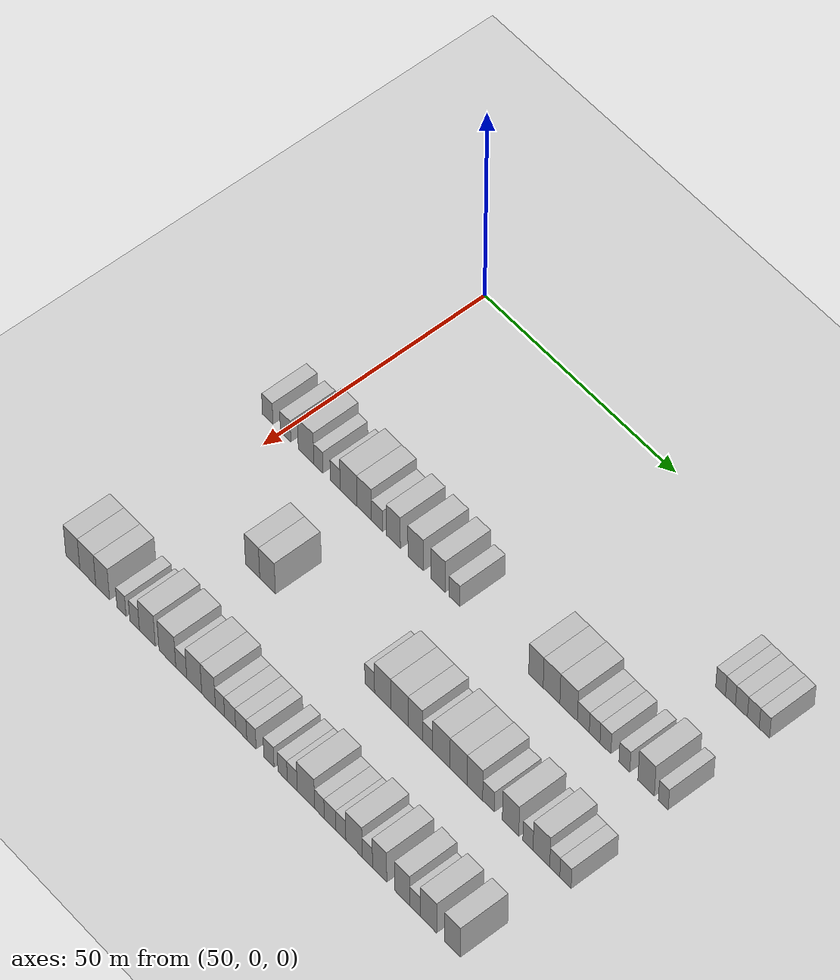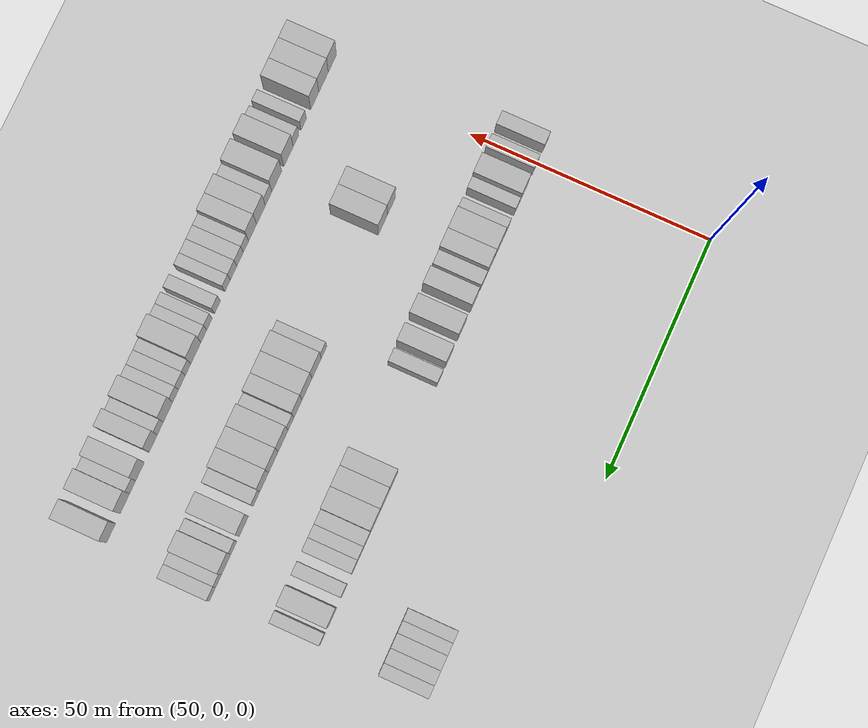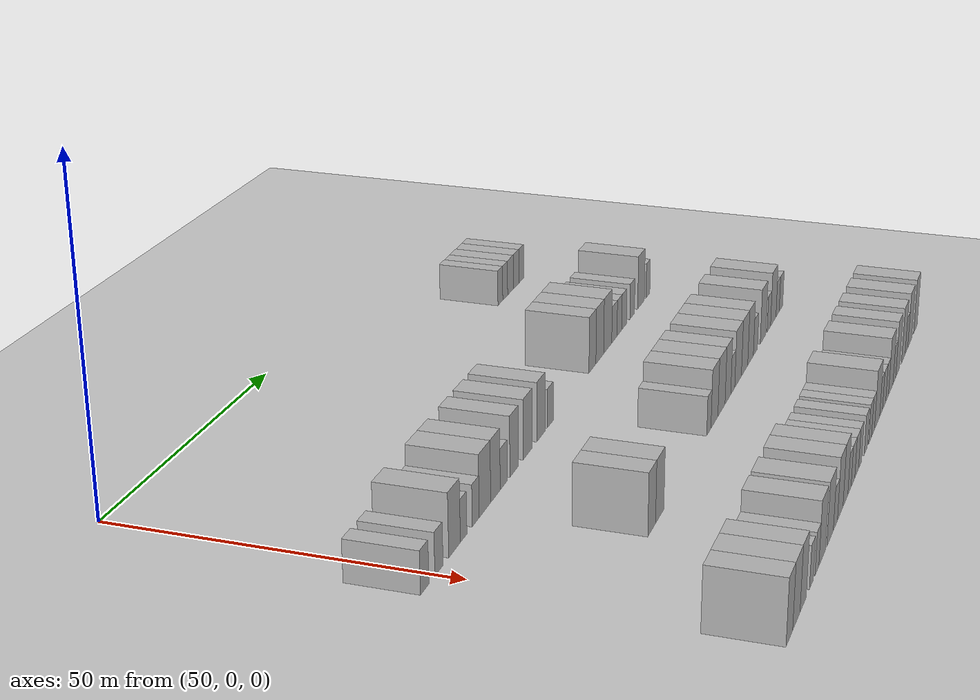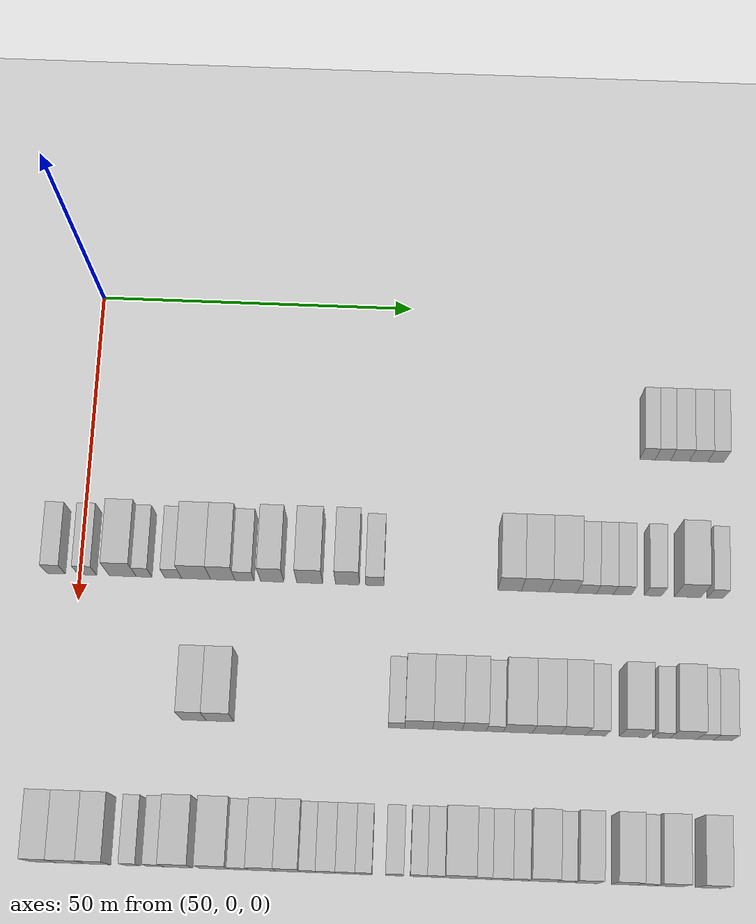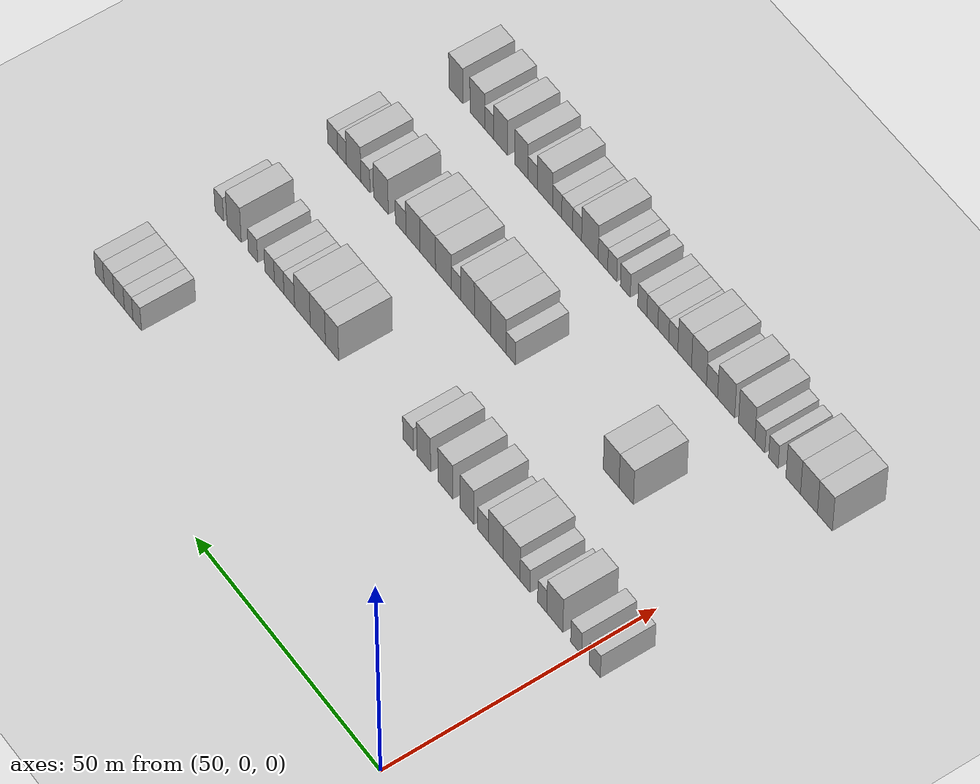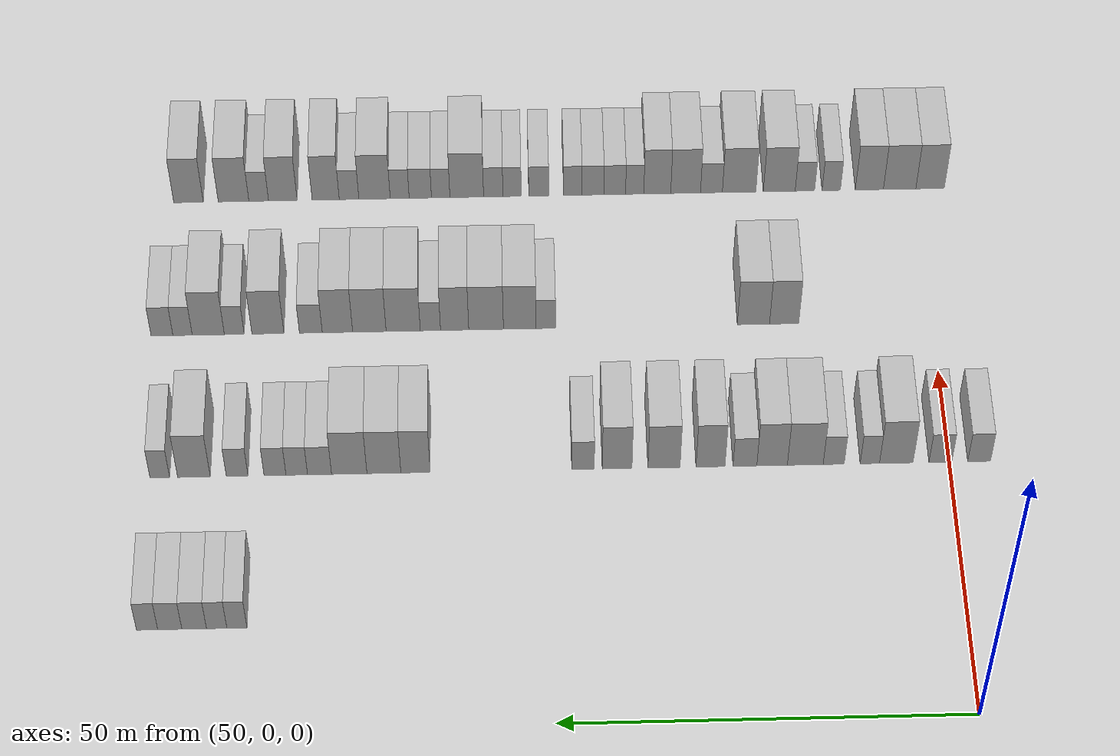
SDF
<sdf version="1.6">
 <world name="default">
  <include>
   <name>ground_plane_2</name>
   <uri>model://HANNAS_ground_plane</uri>
   <pose>100 0 0  0 0 0</pose>
  </include>
  <model name="building_489">
   <static>1</static>
   <pose>69.0000 88.1340 0 0.000000 0.000000 0.000000</pose>
   <link name="link">
    <pose>0 0 3.00 0 0 0</pose>
    <collision name="collision"><geometry><box><size>10.0000 2.4201 6.0000</size></box></geometry></collision>
    <visual name="visual">
     <cast_shadows>0</cast_shadows>
     <geometry><box><size>10.0000 2.4201 6.0000</size></box></geometry>
     <material>
      <script>
       <uri>model://HANNAS_wall/materials/scripts</uri>
       <uri>model://HANNAS_wall/materials/textures</uri>
       <name>vrc/HANNAS_wall</name>
      </script>
     </material>
    </visual>
   </link>
  </model>
  <model name="building_490">
   <static>1</static>
   <pose>69.0000 90.5701 0 0.000000 0.000000 0.000000</pose>
   <link name="link">
    <pose>0 0 3.00 0 0 0</pose>
    <collision name="collision"><geometry><box><size>10.0000 2.4521 6.0000</size></box></geometry></collision>
    <visual name="visual">
     <cast_shadows>0</cast_shadows>
     <geometry><box><size>10.0000 2.4521 6.0000</size></box></geometry>
     <material>
      <script>
       <uri>model://HANNAS_wall/materials/scripts</uri>
       <uri>model://HANNAS_wall/materials/textures</uri>
       <name>vrc/HANNAS_wall</name>
      </script>
     </material>
    </visual>
   </link>
  </model>
  <model name="building_491">
   <static>1</static>
   <pose>69.0000 93.2754 0 0.000000 0.000000 0.000000</pose>
   <link name="link">
    <pose>0 0 3.00 0 0 0</pose>
    <collision name="collision"><geometry><box><size>10.0000 2.9585 6.0000</size></box></geometry></collision>
    <visual name="visual">
     <cast_shadows>0</cast_shadows>
     <geometry><box><size>10.0000 2.9585 6.0000</size></box></geometry>
     <material>
      <script>
       <uri>model://HANNAS_wall/materials/scripts</uri>
       <uri>model://HANNAS_wall/materials/textures</uri>
       <name>vrc/HANNAS_wall</name>
      </script>
     </material>
    </visual>
   </link>
  </model>
  <model name="building_492">
   <static>1</static>
   <pose>69.0000 96.2044 0 0.000000 0.000000 0.000000</pose>
   <link name="link">
    <pose>0 0 3.00 0 0 0</pose>
    <collision name="collision"><geometry><box><size>10.0000 2.8995 6.0000</size></box></geometry></collision>
    <visual name="visual">
     <cast_shadows>0</cast_shadows>
     <geometry><box><size>10.0000 2.8995 6.0000</size></box></geometry>
     <material>
      <script>
       <uri>model://HANNAS_wall/materials/scripts</uri>
       <uri>model://HANNAS_wall/materials/textures</uri>
       <name>vrc/HANNAS_wall</name>
      </script>
     </material>
    </visual>
   </link>
  </model>
  <model name="building_493">
   <static>1</static>
   <pose>69.0000 98.9300 0 0.000000 0.000000 0.000000</pose>
   <link name="link">
    <pose>0 0 3.00 0 0 0</pose>
    <collision name="collision"><geometry><box><size>10.0000 2.5518 6.0000</size></box></geometry></collision>
    <visual name="visual">
     <cast_shadows>0</cast_shadows>
     <geometry><box><size>10.0000 2.5518 6.0000</size></box></geometry>
     <material>
      <script>
       <uri>model://HANNAS_wall/materials/scripts</uri>
       <uri>model://HANNAS_wall/materials/textures</uri>
       <name>vrc/HANNAS_wall</name>
      </script>
     </material>
    </visual>
   </link>
  </model>
  <model name="building_658">
   <static>1</static>
   <pose>91.0000 -3.7463 0 0.000000 0.000000 0.000000</pose>
   <link name="link">
    <pose>0 0 3.00 0 0 0</pose>
    <collision name="collision"><geometry><box><size>10.0000 2.8532 6.0000</size></box></geometry></collision>
    <visual name="visual">
     <cast_shadows>0</cast_shadows>
     <geometry><box><size>10.0000 2.8532 6.0000</size></box></geometry>
     <material>
      <script>
       <uri>model://HANNAS_wall/materials/scripts</uri>
       <uri>model://HANNAS_wall/materials/textures</uri>
       <name>vrc/HANNAS_wall</name>
      </script>
     </material>
    </visual>
   </link>
  </model>
  <model name="building_659">
   <static>1</static>
   <pose>91.0000 1.1121 0 0.000000 0.000000 0.000000</pose>
   <link name="link">
    <pose>0 0 3.00 0 0 0</pose>
    <collision name="collision"><geometry><box><size>10.0000 2.8635 6.0000</size></box></geometry></collision>
    <visual name="visual">
     <cast_shadows>0</cast_shadows>
     <geometry><box><size>10.0000 2.8635 6.0000</size></box></geometry>
     <material>
      <script>
       <uri>model://HANNAS_wall/materials/scripts</uri>
       <uri>model://HANNAS_wall/materials/textures</uri>
       <name>vrc/HANNAS_wall</name>
      </script>
     </material>
    </visual>
   </link>
  </model>
  <model name="building_660">
   <static>1</static>
   <pose>91.0000 6.6445 0 0.000000 0.000000 0.000000</pose>
   <link name="link">
    <pose>0 0 4.50 0 0 0</pose>
    <collision name="collision"><geometry><box><size>10.0000 4.2013 9.0000</size></box></geometry></collision>
    <visual name="visual">
     <cast_shadows>0</cast_shadows>
     <geometry><box><size>10.0000 4.2013 9.0000</size></box></geometry>
     <material>
      <script>
       <uri>model://HANNAS_wall/materials/scripts</uri>
       <uri>model://HANNAS_wall/materials/textures</uri>
       <name>vrc/HANNAS_wall</name>
      </script>
     </material>
    </visual>
   </link>
  </model>
  <model name="building_661">
   <static>1</static>
   <pose>91.0000 9.9551 0 0.000000 0.000000 0.000000</pose>
   <link name="link">
    <pose>0 0 3.00 0 0 0</pose>
    <collision name="collision"><geometry><box><size>10.0000 2.4200 6.0000</size></box></geometry></collision>
    <visual name="visual">
     <cast_shadows>0</cast_shadows>
     <geometry><box><size>10.0000 2.4200 6.0000</size></box></geometry>
     <material>
      <script>
       <uri>model://HANNAS_wall/materials/scripts</uri>
       <uri>model://HANNAS_wall/materials/textures</uri>
       <name>vrc/HANNAS_wall</name>
      </script>
     </material>
    </visual>
   </link>
  </model>
  <model name="building_662">
   <static>1</static>
   <pose>91.0000 14.4806 0 0.000000 0.000000 0.000000</pose>
   <link name="link">
    <pose>0 0 3.00 0 0 0</pose>
    <collision name="collision"><geometry><box><size>10.0000 2.6311 6.0000</size></box></geometry></collision>
    <visual name="visual">
     <cast_shadows>0</cast_shadows>
     <geometry><box><size>10.0000 2.6311 6.0000</size></box></geometry>
     <material>
      <script>
       <uri>model://HANNAS_wall/materials/scripts</uri>
       <uri>model://HANNAS_wall/materials/textures</uri>
       <name>vrc/HANNAS_wall</name>
      </script>
     </material>
    </visual>
   </link>
  </model>
  <model name="building_663">
   <static>1</static>
   <pose>91.0000 18.0398 0 0.000000 0.000000 0.000000</pose>
   <link name="link">
    <pose>0 0 4.50 0 0 0</pose>
    <collision name="collision"><geometry><box><size>10.0000 4.4873 9.0000</size></box></geometry></collision>
    <visual name="visual">
     <cast_shadows>0</cast_shadows>
     <geometry><box><size>10.0000 4.4873 9.0000</size></box></geometry>
     <material>
      <script>
       <uri>model://HANNAS_wall/materials/scripts</uri>
       <uri>model://HANNAS_wall/materials/textures</uri>
       <name>vrc/HANNAS_wall</name>
      </script>
     </material>
    </visual>
   </link>
  </model>
  <model name="building_664">
   <static>1</static>
   <pose>91.0000 22.1938 0 0.000000 0.000000 0.000000</pose>
   <link name="link">
    <pose>0 0 4.50 0 0 0</pose>
    <collision name="collision"><geometry><box><size>10.0000 3.8207 9.0000</size></box></geometry></collision>
    <visual name="visual">
     <cast_shadows>0</cast_shadows>
     <geometry><box><size>10.0000 3.8207 9.0000</size></box></geometry>
     <material>
      <script>
       <uri>model://HANNAS_wall/materials/scripts</uri>
       <uri>model://HANNAS_wall/materials/textures</uri>
       <name>vrc/HANNAS_wall</name>
      </script>
     </material>
    </visual>
   </link>
  </model>
  <model name="building_665">
   <static>1</static>
   <pose>91.0000 25.5948 0 0.000000 0.000000 0.000000</pose>
   <link name="link">
    <pose>0 0 3.00 0 0 0</pose>
    <collision name="collision"><geometry><box><size>10.0000 2.9813 6.0000</size></box></geometry></collision>
    <visual name="visual">
     <cast_shadows>0</cast_shadows>
     <geometry><box><size>10.0000 2.9813 6.0000</size></box></geometry>
     <material>
      <script>
       <uri>model://HANNAS_wall/materials/scripts</uri>
       <uri>model://HANNAS_wall/materials/textures</uri>
       <name>vrc/HANNAS_wall</name>
      </script>
     </material>
    </visual>
   </link>
  </model>
  <model name="building_666">
   <static>1</static>
   <pose>91.0000 29.8964 0 0.000000 0.000000 0.000000</pose>
   <link name="link">
    <pose>0 0 4.50 0 0 0</pose>
    <collision name="collision"><geometry><box><size>10.0000 3.6218 9.0000</size></box></geometry></collision>
    <visual name="visual">
     <cast_shadows>0</cast_shadows>
     <geometry><box><size>10.0000 3.6218 9.0000</size></box></geometry>
     <material>
      <script>
       <uri>model://HANNAS_wall/materials/scripts</uri>
       <uri>model://HANNAS_wall/materials/textures</uri>
       <name>vrc/HANNAS_wall</name>
      </script>
     </material>
    </visual>
   </link>
  </model>
  <model name="building_667">
   <static>1</static>
   <pose>91.0000 35.7132 0 0.000000 0.000000 0.000000</pose>
   <link name="link">
    <pose>0 0 4.50 0 0 0</pose>
    <collision name="collision"><geometry><box><size>10.0000 4.0118 9.0000</size></box></geometry></collision>
    <visual name="visual">
     <cast_shadows>0</cast_shadows>
     <geometry><box><size>10.0000 4.0118 9.0000</size></box></geometry>
     <material>
      <script>
       <uri>model://HANNAS_wall/materials/scripts</uri>
       <uri>model://HANNAS_wall/materials/textures</uri>
       <name>vrc/HANNAS_wall</name>
      </script>
     </material>
    </visual>
   </link>
  </model>
  <model name="building_668">
   <static>1</static>
   <pose>91.0000 41.5722 0 0.000000 0.000000 0.000000</pose>
   <link name="link">
    <pose>0 0 4.50 0 0 0</pose>
    <collision name="collision"><geometry><box><size>10.0000 3.7061 9.0000</size></box></geometry></collision>
    <visual name="visual">
     <cast_shadows>0</cast_shadows>
     <geometry><box><size>10.0000 3.7061 9.0000</size></box></geometry>
     <material>
      <script>
       <uri>model://HANNAS_wall/materials/scripts</uri>
       <uri>model://HANNAS_wall/materials/textures</uri>
       <name>vrc/HANNAS_wall</name>
      </script>
     </material>
    </visual>
   </link>
  </model>
  <model name="building_669">
   <static>1</static>
   <pose>91.0000 45.8322 0 0.000000 0.000000 0.000000</pose>
   <link name="link">
    <pose>0 0 3.00 0 0 0</pose>
    <collision name="collision"><geometry><box><size>10.0000 2.8141 6.0000</size></box></geometry></collision>
    <visual name="visual">
     <cast_shadows>0</cast_shadows>
     <geometry><box><size>10.0000 2.8141 6.0000</size></box></geometry>
     <material>
      <script>
       <uri>model://HANNAS_wall/materials/scripts</uri>
       <uri>model://HANNAS_wall/materials/textures</uri>
       <name>vrc/HANNAS_wall</name>
      </script>
     </material>
    </visual>
   </link>
  </model>
  <model name="building_670">
   <static>1</static>
   <pose>91.0000 66.7347 0 0.000000 0.000000 0.000000</pose>
   <link name="link">
    <pose>0 0 4.50 0 0 0</pose>
    <collision name="collision"><geometry><box><size>10.0000 3.6636 9.0000</size></box></geometry></collision>
    <visual name="visual">
     <cast_shadows>0</cast_shadows>
     <geometry><box><size>10.0000 3.6636 9.0000</size></box></geometry>
     <material>
      <script>
       <uri>model://HANNAS_wall/materials/scripts</uri>
       <uri>model://HANNAS_wall/materials/textures</uri>
       <name>vrc/HANNAS_wall</name>
      </script>
     </material>
    </visual>
   </link>
  </model>
  <model name="building_671">
   <static>1</static>
   <pose>91.0000 70.6811 0 0.000000 0.000000 0.000000</pose>
   <link name="link">
    <pose>0 0 4.50 0 0 0</pose>
    <collision name="collision"><geometry><box><size>10.0000 4.2292 9.0000</size></box></geometry></collision>
    <visual name="visual">
     <cast_shadows>0</cast_shadows>
     <geometry><box><size>10.0000 4.2292 9.0000</size></box></geometry>
     <material>
      <script>
       <uri>model://HANNAS_wall/materials/scripts</uri>
       <uri>model://HANNAS_wall/materials/textures</uri>
       <name>vrc/HANNAS_wall</name>
      </script>
     </material>
    </visual>
   </link>
  </model>
  <model name="building_672">
   <static>1</static>
   <pose>91.0000 75.0000 0 0.000000 0.000000 0.000000</pose>
   <link name="link">
    <pose>0 0 4.50 0 0 0</pose>
    <collision name="collision"><geometry><box><size>10.0000 4.4087 9.0000</size></box></geometry></collision>
    <visual name="visual">
     <cast_shadows>0</cast_shadows>
     <geometry><box><size>10.0000 4.4087 9.0000</size></box></geometry>
     <material>
      <script>
       <uri>model://HANNAS_wall/materials/scripts</uri>
       <uri>model://HANNAS_wall/materials/textures</uri>
       <name>vrc/HANNAS_wall</name>
      </script>
     </material>
    </visual>
   </link>
  </model>
  <model name="building_673">
   <static>1</static>
   <pose>91.0000 78.7001 0 0.000000 0.000000 0.000000</pose>
   <link name="link">
    <pose>0 0 3.00 0 0 0</pose>
    <collision name="collision"><geometry><box><size>10.0000 2.9914 6.0000</size></box></geometry></collision>
    <visual name="visual">
     <cast_shadows>0</cast_shadows>
     <geometry><box><size>10.0000 2.9914 6.0000</size></box></geometry>
     <material>
      <script>
       <uri>model://HANNAS_wall/materials/scripts</uri>
       <uri>model://HANNAS_wall/materials/textures</uri>
       <name>vrc/HANNAS_wall</name>
      </script>
     </material>
    </visual>
   </link>
  </model>
  <model name="building_674">
   <static>1</static>
   <pose>91.0000 81.5377 0 0.000000 0.000000 0.000000</pose>
   <link name="link">
    <pose>0 0 3.00 0 0 0</pose>
    <collision name="collision"><geometry><box><size>10.0000 2.6840 6.0000</size></box></geometry></collision>
    <visual name="visual">
     <cast_shadows>0</cast_shadows>
     <geometry><box><size>10.0000 2.6840 6.0000</size></box></geometry>
     <material>
      <script>
       <uri>model://HANNAS_wall/materials/scripts</uri>
       <uri>model://HANNAS_wall/materials/textures</uri>
       <name>vrc/HANNAS_wall</name>
      </script>
     </material>
    </visual>
   </link>
  </model>
  <model name="building_675">
   <static>1</static>
   <pose>91.0000 84.2447 0 0.000000 0.000000 0.000000</pose>
   <link name="link">
    <pose>0 0 3.00 0 0 0</pose>
    <collision name="collision"><geometry><box><size>10.0000 2.7299 6.0000</size></box></geometry></collision>
    <visual name="visual">
     <cast_shadows>0</cast_shadows>
     <geometry><box><size>10.0000 2.7299 6.0000</size></box></geometry>
     <material>
      <script>
       <uri>model://HANNAS_wall/materials/scripts</uri>
       <uri>model://HANNAS_wall/materials/textures</uri>
       <name>vrc/HANNAS_wall</name>
      </script>
     </material>
    </visual>
   </link>
  </model>
  <model name="building_676">
   <static>1</static>
   <pose>91.0000 88.9585 0 0.000000 0.000000 0.000000</pose>
   <link name="link">
    <pose>0 0 3.00 0 0 0</pose>
    <collision name="collision"><geometry><box><size>10.0000 2.6976 6.0000</size></box></geometry></collision>
    <visual name="visual">
     <cast_shadows>0</cast_shadows>
     <geometry><box><size>10.0000 2.6976 6.0000</size></box></geometry>
     <material>
      <script>
       <uri>model://HANNAS_wall/materials/scripts</uri>
       <uri>model://HANNAS_wall/materials/textures</uri>
       <name>vrc/HANNAS_wall</name>
      </script>
     </material>
    </visual>
   </link>
  </model>
  <model name="building_677">
   <static>1</static>
   <pose>91.0000 94.3377 0 0.000000 0.000000 0.000000</pose>
   <link name="link">
    <pose>0 0 4.50 0 0 0</pose>
    <collision name="collision"><geometry><box><size>10.0000 4.0609 9.0000</size></box></geometry></collision>
    <visual name="visual">
     <cast_shadows>0</cast_shadows>
     <geometry><box><size>10.0000 4.0609 9.0000</size></box></geometry>
     <material>
      <script>
       <uri>model://HANNAS_wall/materials/scripts</uri>
       <uri>model://HANNAS_wall/materials/textures</uri>
       <name>vrc/HANNAS_wall</name>
      </script>
     </material>
    </visual>
   </link>
  </model>
  <model name="building_678">
   <static>1</static>
   <pose>91.0000 98.5909 0 0.000000 0.000000 0.000000</pose>
   <link name="link">
    <pose>0 0 3.00 0 0 0</pose>
    <collision name="collision"><geometry><box><size>10.0000 2.4454 6.0000</size></box></geometry></collision>
    <visual name="visual">
     <cast_shadows>0</cast_shadows>
     <geometry><box><size>10.0000 2.4454 6.0000</size></box></geometry>
     <material>
      <script>
       <uri>model://HANNAS_wall/materials/scripts</uri>
       <uri>model://HANNAS_wall/materials/textures</uri>
       <name>vrc/HANNAS_wall</name>
      </script>
     </material>
    </visual>
   </link>
  </model>
  <model name="building_844">
   <static>1</static>
   <pose>113.0000 19.2204 0 0.000000 0.000000 0.000000</pose>
   <link name="link">
    <pose>0 0 4.50 0 0 0</pose>
    <collision name="collision"><geometry><box><size>10.0000 3.7724 9.0000</size></box></geometry></collision>
    <visual name="visual">
     <cast_shadows>0</cast_shadows>
     <geometry><box><size>10.0000 3.7724 9.0000</size></box></geometry>
     <material>
      <script>
       <uri>model://HANNAS_wall/materials/scripts</uri>
       <uri>model://HANNAS_wall/materials/textures</uri>
       <name>vrc/HANNAS_wall</name>
      </script>
     </material>
    </visual>
   </link>
  </model>
  <model name="building_845">
   <static>1</static>
   <pose>113.0000 23.1888 0 0.000000 0.000000 0.000000</pose>
   <link name="link">
    <pose>0 0 4.50 0 0 0</pose>
    <collision name="collision"><geometry><box><size>10.0000 4.1645 9.0000</size></box></geometry></collision>
    <visual name="visual">
     <cast_shadows>0</cast_shadows>
     <geometry><box><size>10.0000 4.1645 9.0000</size></box></geometry>
     <material>
      <script>
       <uri>model://HANNAS_wall/materials/scripts</uri>
       <uri>model://HANNAS_wall/materials/textures</uri>
       <name>vrc/HANNAS_wall</name>
      </script>
     </material>
    </visual>
   </link>
  </model>
  <model name="building_846">
   <static>1</static>
   <pose>113.0000 50.0192 0 0.000000 0.000000 0.000000</pose>
   <link name="link">
    <pose>0 0 3.00 0 0 0</pose>
    <collision name="collision"><geometry><box><size>10.0000 2.4988 6.0000</size></box></geometry></collision>
    <visual name="visual">
     <cast_shadows>0</cast_shadows>
     <geometry><box><size>10.0000 2.4988 6.0000</size></box></geometry>
     <material>
      <script>
       <uri>model://HANNAS_wall/materials/scripts</uri>
       <uri>model://HANNAS_wall/materials/textures</uri>
       <name>vrc/HANNAS_wall</name>
      </script>
     </material>
    </visual>
   </link>
  </model>
  <model name="building_847">
   <static>1</static>
   <pose>113.0000 53.3808 0 0.000000 0.000000 0.000000</pose>
   <link name="link">
    <pose>0 0 4.50 0 0 0</pose>
    <collision name="collision"><geometry><box><size>10.0000 4.2245 9.0000</size></box></geometry></collision>
    <visual name="visual">
     <cast_shadows>0</cast_shadows>
     <geometry><box><size>10.0000 4.2245 9.0000</size></box></geometry>
     <material>
      <script>
       <uri>model://HANNAS_wall/materials/scripts</uri>
       <uri>model://HANNAS_wall/materials/textures</uri>
       <name>vrc/HANNAS_wall</name>
      </script>
     </material>
    </visual>
   </link>
  </model>
  <model name="building_848">
   <static>1</static>
   <pose>113.0000 57.7314 0 0.000000 0.000000 0.000000</pose>
   <link name="link">
    <pose>0 0 4.50 0 0 0</pose>
    <collision name="collision"><geometry><box><size>10.0000 4.4767 9.0000</size></box></geometry></collision>
    <visual name="visual">
     <cast_shadows>0</cast_shadows>
     <geometry><box><size>10.0000 4.4767 9.0000</size></box></geometry>
     <material>
      <script>
       <uri>model://HANNAS_wall/materials/scripts</uri>
       <uri>model://HANNAS_wall/materials/textures</uri>
       <name>vrc/HANNAS_wall</name>
      </script>
     </material>
    </visual>
   </link>
  </model>
  <model name="building_849">
   <static>1</static>
   <pose>113.0000 61.7901 0 0.000000 0.000000 0.000000</pose>
   <link name="link">
    <pose>0 0 4.50 0 0 0</pose>
    <collision name="collision"><geometry><box><size>10.0000 3.6406 9.0000</size></box></geometry></collision>
    <visual name="visual">
     <cast_shadows>0</cast_shadows>
     <geometry><box><size>10.0000 3.6406 9.0000</size></box></geometry>
     <material>
      <script>
       <uri>model://HANNAS_wall/materials/scripts</uri>
       <uri>model://HANNAS_wall/materials/textures</uri>
       <name>vrc/HANNAS_wall</name>
      </script>
     </material>
    </visual>
   </link>
  </model>
  <model name="building_850">
   <static>1</static>
   <pose>113.0000 64.9165 0 0.000000 0.000000 0.000000</pose>
   <link name="link">
    <pose>0 0 3.00 0 0 0</pose>
    <collision name="collision"><geometry><box><size>10.0000 2.6122 6.0000</size></box></geometry></collision>
    <visual name="visual">
     <cast_shadows>0</cast_shadows>
     <geometry><box><size>10.0000 2.6122 6.0000</size></box></geometry>
     <material>
      <script>
       <uri>model://HANNAS_wall/materials/scripts</uri>
       <uri>model://HANNAS_wall/materials/textures</uri>
       <name>vrc/HANNAS_wall</name>
      </script>
     </material>
    </visual>
   </link>
  </model>
  <model name="building_851">
   <static>1</static>
   <pose>113.0000 68.4270 0 0.000000 0.000000 0.000000</pose>
   <link name="link">
    <pose>0 0 4.50 0 0 0</pose>
    <collision name="collision"><geometry><box><size>10.0000 4.4090 9.0000</size></box></geometry></collision>
    <visual name="visual">
     <cast_shadows>0</cast_shadows>
     <geometry><box><size>10.0000 4.4090 9.0000</size></box></geometry>
     <material>
      <script>
       <uri>model://HANNAS_wall/materials/scripts</uri>
       <uri>model://HANNAS_wall/materials/textures</uri>
       <name>vrc/HANNAS_wall</name>
      </script>
     </material>
    </visual>
   </link>
  </model>
  <model name="building_852">
   <static>1</static>
   <pose>113.0000 72.7889 0 0.000000 0.000000 0.000000</pose>
   <link name="link">
    <pose>0 0 4.50 0 0 0</pose>
    <collision name="collision"><geometry><box><size>10.0000 4.3148 9.0000</size></box></geometry></collision>
    <visual name="visual">
     <cast_shadows>0</cast_shadows>
     <geometry><box><size>10.0000 4.3148 9.0000</size></box></geometry>
     <material>
      <script>
       <uri>model://HANNAS_wall/materials/scripts</uri>
       <uri>model://HANNAS_wall/materials/textures</uri>
       <name>vrc/HANNAS_wall</name>
      </script>
     </material>
    </visual>
   </link>
  </model>
  <model name="building_853">
   <static>1</static>
   <pose>113.0000 76.9017 0 0.000000 0.000000 0.000000</pose>
   <link name="link">
    <pose>0 0 4.50 0 0 0</pose>
    <collision name="collision"><geometry><box><size>10.0000 3.9109 9.0000</size></box></geometry></collision>
    <visual name="visual">
     <cast_shadows>0</cast_shadows>
     <geometry><box><size>10.0000 3.9109 9.0000</size></box></geometry>
     <material>
      <script>
       <uri>model://HANNAS_wall/materials/scripts</uri>
       <uri>model://HANNAS_wall/materials/textures</uri>
       <name>vrc/HANNAS_wall</name>
      </script>
     </material>
    </visual>
   </link>
  </model>
  <model name="building_854">
   <static>1</static>
   <pose>113.0000 80.3277 0 0.000000 0.000000 0.000000</pose>
   <link name="link">
    <pose>0 0 3.00 0 0 0</pose>
    <collision name="collision"><geometry><box><size>10.0000 2.9410 6.0000</size></box></geometry></collision>
    <visual name="visual">
     <cast_shadows>0</cast_shadows>
     <geometry><box><size>10.0000 2.9410 6.0000</size></box></geometry>
     <material>
      <script>
       <uri>model://HANNAS_wall/materials/scripts</uri>
       <uri>model://HANNAS_wall/materials/textures</uri>
       <name>vrc/HANNAS_wall</name>
      </script>
     </material>
    </visual>
   </link>
  </model>
  <model name="building_855">
   <static>1</static>
   <pose>113.0000 85.8581 0 0.000000 0.000000 0.000000</pose>
   <link name="link">
    <pose>0 0 4.50 0 0 0</pose>
    <collision name="collision"><geometry><box><size>10.0000 4.1197 9.0000</size></box></geometry></collision>
    <visual name="visual">
     <cast_shadows>0</cast_shadows>
     <geometry><box><size>10.0000 4.1197 9.0000</size></box></geometry>
     <material>
      <script>
       <uri>model://HANNAS_wall/materials/scripts</uri>
       <uri>model://HANNAS_wall/materials/textures</uri>
       <name>vrc/HANNAS_wall</name>
      </script>
     </material>
    </visual>
   </link>
  </model>
  <model name="building_856">
   <static>1</static>
   <pose>113.0000 90.1954 0 0.000000 0.000000 0.000000</pose>
   <link name="link">
    <pose>0 0 3.00 0 0 0</pose>
    <collision name="collision"><geometry><box><size>10.0000 2.5549 6.0000</size></box></geometry></collision>
    <visual name="visual">
     <cast_shadows>0</cast_shadows>
     <geometry><box><size>10.0000 2.5549 6.0000</size></box></geometry>
     <material>
      <script>
       <uri>model://HANNAS_wall/materials/scripts</uri>
       <uri>model://HANNAS_wall/materials/textures</uri>
       <name>vrc/HANNAS_wall</name>
      </script>
     </material>
    </visual>
   </link>
  </model>
  <model name="building_857">
   <static>1</static>
   <pose>113.0000 93.5423 0 0.000000 0.000000 0.000000</pose>
   <link name="link">
    <pose>0 0 4.50 0 0 0</pose>
    <collision name="collision"><geometry><box><size>10.0000 4.1389 9.0000</size></box></geometry></collision>
    <visual name="visual">
     <cast_shadows>0</cast_shadows>
     <geometry><box><size>10.0000 4.1389 9.0000</size></box></geometry>
     <material>
      <script>
       <uri>model://HANNAS_wall/materials/scripts</uri>
       <uri>model://HANNAS_wall/materials/textures</uri>
       <name>vrc/HANNAS_wall</name>
      </script>
     </material>
    </visual>
   </link>
  </model>
  <model name="building_858">
   <static>1</static>
   <pose>113.0000 96.8560 0 0.000000 0.000000 0.000000</pose>
   <link name="link">
    <pose>0 0 3.00 0 0 0</pose>
    <collision name="collision"><geometry><box><size>10.0000 2.4885 6.0000</size></box></geometry></collision>
    <visual name="visual">
     <cast_shadows>0</cast_shadows>
     <geometry><box><size>10.0000 2.4885 6.0000</size></box></geometry>
     <material>
      <script>
       <uri>model://HANNAS_wall/materials/scripts</uri>
       <uri>model://HANNAS_wall/materials/textures</uri>
       <name>vrc/HANNAS_wall</name>
      </script>
     </material>
    </visual>
   </link>
  </model>
  <model name="building_859">
   <static>1</static>
   <pose>113.0000 99.5002 0 0.000000 0.000000 0.000000</pose>
   <link name="link">
    <pose>0 0 3.00 0 0 0</pose>
    <collision name="collision"><geometry><box><size>10.0000 2.7998 6.0000</size></box></geometry></collision>
    <visual name="visual">
     <cast_shadows>0</cast_shadows>
     <geometry><box><size>10.0000 2.7998 6.0000</size></box></geometry>
     <material>
      <script>
       <uri>model://HANNAS_wall/materials/scripts</uri>
       <uri>model://HANNAS_wall/materials/textures</uri>
       <name>vrc/HANNAS_wall</name>
      </script>
     </material>
    </visual>
   </link>
  </model>
  <model name="building_1033">
   <static>1</static>
   <pose>135.0000 -1.7783 0 0.000000 0.000000 0.000000</pose>
   <link name="link">
    <pose>0 0 4.50 0 0 0</pose>
    <collision name="collision"><geometry><box><size>10.0000 3.8046 9.0000</size></box></geometry></collision>
    <visual name="visual">
     <cast_shadows>0</cast_shadows>
     <geometry><box><size>10.0000 3.8046 9.0000</size></box></geometry>
     <material>
      <script>
       <uri>model://HANNAS_wall/materials/scripts</uri>
       <uri>model://HANNAS_wall/materials/textures</uri>
       <name>vrc/HANNAS_wall</name>
      </script>
     </material>
    </visual>
   </link>
  </model>
  <model name="building_1034">
   <static>1</static>
   <pose>135.0000 2.2973 0 0.000000 0.000000 0.000000</pose>
   <link name="link">
    <pose>0 0 4.50 0 0 0</pose>
    <collision name="collision"><geometry><box><size>10.0000 4.3468 9.0000</size></box></geometry></collision>
    <visual name="visual">
     <cast_shadows>0</cast_shadows>
     <geometry><box><size>10.0000 4.3468 9.0000</size></box></geometry>
     <material>
      <script>
       <uri>model://HANNAS_wall/materials/scripts</uri>
       <uri>model://HANNAS_wall/materials/textures</uri>
       <name>vrc/HANNAS_wall</name>
      </script>
     </material>
    </visual>
   </link>
  </model>
  <model name="building_1035">
   <static>1</static>
   <pose>135.0000 6.3488 0 0.000000 0.000000 0.000000</pose>
   <link name="link">
    <pose>0 0 4.50 0 0 0</pose>
    <collision name="collision"><geometry><box><size>10.0000 3.7562 9.0000</size></box></geometry></collision>
    <visual name="visual">
     <cast_shadows>0</cast_shadows>
     <geometry><box><size>10.0000 3.7562 9.0000</size></box></geometry>
     <material>
      <script>
       <uri>model://HANNAS_wall/materials/scripts</uri>
       <uri>model://HANNAS_wall/materials/textures</uri>
       <name>vrc/HANNAS_wall</name>
      </script>
     </material>
    </visual>
   </link>
  </model>
  <model name="building_1036">
   <static>1</static>
   <pose>135.0000 11.4536 0 0.000000 0.000000 0.000000</pose>
   <link name="link">
    <pose>0 0 3.00 0 0 0</pose>
    <collision name="collision"><geometry><box><size>10.0000 2.4532 6.0000</size></box></geometry></collision>
    <visual name="visual">
     <cast_shadows>0</cast_shadows>
     <geometry><box><size>10.0000 2.4532 6.0000</size></box></geometry>
     <material>
      <script>
       <uri>model://HANNAS_wall/materials/scripts</uri>
       <uri>model://HANNAS_wall/materials/textures</uri>
       <name>vrc/HANNAS_wall</name>
      </script>
     </material>
    </visual>
   </link>
  </model>
  <model name="building_1037">
   <static>1</static>
   <pose>135.0000 14.9742 0 0.000000 0.000000 0.000000</pose>
   <link name="link">
    <pose>0 0 3.00 0 0 0</pose>
    <collision name="collision"><geometry><box><size>10.0000 2.5880 6.0000</size></box></geometry></collision>
    <visual name="visual">
     <cast_shadows>0</cast_shadows>
     <geometry><box><size>10.0000 2.5880 6.0000</size></box></geometry>
     <material>
      <script>
       <uri>model://HANNAS_wall/materials/scripts</uri>
       <uri>model://HANNAS_wall/materials/textures</uri>
       <name>vrc/HANNAS_wall</name>
      </script>
     </material>
    </visual>
   </link>
  </model>
  <model name="building_1038">
   <static>1</static>
   <pose>135.0000 18.3989 0 0.000000 0.000000 0.000000</pose>
   <link name="link">
    <pose>0 0 4.50 0 0 0</pose>
    <collision name="collision"><geometry><box><size>10.0000 4.2615 9.0000</size></box></geometry></collision>
    <visual name="visual">
     <cast_shadows>0</cast_shadows>
     <geometry><box><size>10.0000 4.2615 9.0000</size></box></geometry>
     <material>
      <script>
       <uri>model://HANNAS_wall/materials/scripts</uri>
       <uri>model://HANNAS_wall/materials/textures</uri>
       <name>vrc/HANNAS_wall</name>
      </script>
     </material>
    </visual>
   </link>
  </model>
  <model name="building_1039">
   <static>1</static>
   <pose>135.0000 23.7658 0 0.000000 0.000000 0.000000</pose>
   <link name="link">
    <pose>0 0 4.50 0 0 0</pose>
    <collision name="collision"><geometry><box><size>10.0000 4.4723 9.0000</size></box></geometry></collision>
    <visual name="visual">
     <cast_shadows>0</cast_shadows>
     <geometry><box><size>10.0000 4.4723 9.0000</size></box></geometry>
     <material>
      <script>
       <uri>model://HANNAS_wall/materials/scripts</uri>
       <uri>model://HANNAS_wall/materials/textures</uri>
       <name>vrc/HANNAS_wall</name>
      </script>
     </material>
    </visual>
   </link>
  </model>
  <model name="building_1040">
   <static>1</static>
   <pose>135.0000 27.4633 0 0.000000 0.000000 0.000000</pose>
   <link name="link">
    <pose>0 0 3.00 0 0 0</pose>
    <collision name="collision"><geometry><box><size>10.0000 2.9227 6.0000</size></box></geometry></collision>
    <visual name="visual">
     <cast_shadows>0</cast_shadows>
     <geometry><box><size>10.0000 2.9227 6.0000</size></box></geometry>
     <material>
      <script>
       <uri>model://HANNAS_wall/materials/scripts</uri>
       <uri>model://HANNAS_wall/materials/textures</uri>
       <name>vrc/HANNAS_wall</name>
      </script>
     </material>
    </visual>
   </link>
  </model>
  <model name="building_1041">
   <static>1</static>
   <pose>135.0000 30.9123 0 0.000000 0.000000 0.000000</pose>
   <link name="link">
    <pose>0 0 4.50 0 0 0</pose>
    <collision name="collision"><geometry><box><size>10.0000 3.9752 9.0000</size></box></geometry></collision>
    <visual name="visual">
     <cast_shadows>0</cast_shadows>
     <geometry><box><size>10.0000 3.9752 9.0000</size></box></geometry>
     <material>
      <script>
       <uri>model://HANNAS_wall/materials/scripts</uri>
       <uri>model://HANNAS_wall/materials/textures</uri>
       <name>vrc/HANNAS_wall</name>
      </script>
     </material>
    </visual>
   </link>
  </model>
  <model name="building_1042">
   <static>1</static>
   <pose>135.0000 34.7021 0 0.000000 0.000000 0.000000</pose>
   <link name="link">
    <pose>0 0 4.50 0 0 0</pose>
    <collision name="collision"><geometry><box><size>10.0000 3.6043 9.0000</size></box></geometry></collision>
    <visual name="visual">
     <cast_shadows>0</cast_shadows>
     <geometry><box><size>10.0000 3.6043 9.0000</size></box></geometry>
     <material>
      <script>
       <uri>model://HANNAS_wall/materials/scripts</uri>
       <uri>model://HANNAS_wall/materials/textures</uri>
       <name>vrc/HANNAS_wall</name>
      </script>
     </material>
    </visual>
   </link>
  </model>
  <model name="building_1043">
   <static>1</static>
   <pose>135.0000 37.7168 0 0.000000 0.000000 0.000000</pose>
   <link name="link">
    <pose>0 0 3.00 0 0 0</pose>
    <collision name="collision"><geometry><box><size>10.0000 2.4252 6.0000</size></box></geometry></collision>
    <visual name="visual">
     <cast_shadows>0</cast_shadows>
     <geometry><box><size>10.0000 2.4252 6.0000</size></box></geometry>
     <material>
      <script>
       <uri>model://HANNAS_wall/materials/scripts</uri>
       <uri>model://HANNAS_wall/materials/textures</uri>
       <name>vrc/HANNAS_wall</name>
      </script>
     </material>
    </visual>
   </link>
  </model>
  <model name="building_1044">
   <static>1</static>
   <pose>135.0000 40.3773 0 0.000000 0.000000 0.000000</pose>
   <link name="link">
    <pose>0 0 3.00 0 0 0</pose>
    <collision name="collision"><geometry><box><size>10.0000 2.8958 6.0000</size></box></geometry></collision>
    <visual name="visual">
     <cast_shadows>0</cast_shadows>
     <geometry><box><size>10.0000 2.8958 6.0000</size></box></geometry>
     <material>
      <script>
       <uri>model://HANNAS_wall/materials/scripts</uri>
       <uri>model://HANNAS_wall/materials/textures</uri>
       <name>vrc/HANNAS_wall</name>
      </script>
     </material>
    </visual>
   </link>
  </model>
  <model name="building_1045">
   <static>1</static>
   <pose>135.0000 43.2845 0 0.000000 0.000000 0.000000</pose>
   <link name="link">
    <pose>0 0 3.00 0 0 0</pose>
    <collision name="collision"><geometry><box><size>10.0000 2.9186 6.0000</size></box></geometry></collision>
    <visual name="visual">
     <cast_shadows>0</cast_shadows>
     <geometry><box><size>10.0000 2.9186 6.0000</size></box></geometry>
     <material>
      <script>
       <uri>model://HANNAS_wall/materials/scripts</uri>
       <uri>model://HANNAS_wall/materials/textures</uri>
       <name>vrc/HANNAS_wall</name>
      </script>
     </material>
    </visual>
   </link>
  </model>
  <model name="building_1046">
   <static>1</static>
   <pose>135.0000 45.9631 0 0.000000 0.000000 0.000000</pose>
   <link name="link">
    <pose>0 0 3.00 0 0 0</pose>
    <collision name="collision"><geometry><box><size>10.0000 2.4387 6.0000</size></box></geometry></collision>
    <visual name="visual">
     <cast_shadows>0</cast_shadows>
     <geometry><box><size>10.0000 2.4387 6.0000</size></box></geometry>
     <material>
      <script>
       <uri>model://HANNAS_wall/materials/scripts</uri>
       <uri>model://HANNAS_wall/materials/textures</uri>
       <name>vrc/HANNAS_wall</name>
      </script>
     </material>
    </visual>
   </link>
  </model>
  <model name="building_1047">
   <static>1</static>
   <pose>135.0000 50.5126 0 0.000000 0.000000 0.000000</pose>
   <link name="link">
    <pose>0 0 3.00 0 0 0</pose>
    <collision name="collision"><geometry><box><size>10.0000 2.6603 6.0000</size></box></geometry></collision>
    <visual name="visual">
     <cast_shadows>0</cast_shadows>
     <geometry><box><size>10.0000 2.6603 6.0000</size></box></geometry>
     <material>
      <script>
       <uri>model://HANNAS_wall/materials/scripts</uri>
       <uri>model://HANNAS_wall/materials/textures</uri>
       <name>vrc/HANNAS_wall</name>
      </script>
     </material>
    </visual>
   </link>
  </model>
  <model name="building_1048">
   <static>1</static>
   <pose>135.0000 54.0635 0 0.000000 0.000000 0.000000</pose>
   <link name="link">
    <pose>0 0 3.00 0 0 0</pose>
    <collision name="collision"><geometry><box><size>10.0000 2.4414 6.0000</size></box></geometry></collision>
    <visual name="visual">
     <cast_shadows>0</cast_shadows>
     <geometry><box><size>10.0000 2.4414 6.0000</size></box></geometry>
     <material>
      <script>
       <uri>model://HANNAS_wall/materials/scripts</uri>
       <uri>model://HANNAS_wall/materials/textures</uri>
       <name>vrc/HANNAS_wall</name>
      </script>
     </material>
    </visual>
   </link>
  </model>
  <model name="building_1049">
   <static>1</static>
   <pose>135.0000 56.5766 0 0.000000 0.000000 0.000000</pose>
   <link name="link">
    <pose>0 0 3.00 0 0 0</pose>
    <collision name="collision"><geometry><box><size>10.0000 2.5850 6.0000</size></box></geometry></collision>
    <visual name="visual">
     <cast_shadows>0</cast_shadows>
     <geometry><box><size>10.0000 2.5850 6.0000</size></box></geometry>
     <material>
      <script>
       <uri>model://HANNAS_wall/materials/scripts</uri>
       <uri>model://HANNAS_wall/materials/textures</uri>
       <name>vrc/HANNAS_wall</name>
      </script>
     </material>
    </visual>
   </link>
  </model>
  <model name="building_1050">
   <static>1</static>
   <pose>135.0000 60.1153 0 0.000000 0.000000 0.000000</pose>
   <link name="link">
    <pose>0 0 4.50 0 0 0</pose>
    <collision name="collision"><geometry><box><size>10.0000 4.4923 9.0000</size></box></geometry></collision>
    <visual name="visual">
     <cast_shadows>0</cast_shadows>
     <geometry><box><size>10.0000 4.4923 9.0000</size></box></geometry>
     <material>
      <script>
       <uri>model://HANNAS_wall/materials/scripts</uri>
       <uri>model://HANNAS_wall/materials/textures</uri>
       <name>vrc/HANNAS_wall</name>
      </script>
     </material>
    </visual>
   </link>
  </model>
  <model name="building_1051">
   <static>1</static>
   <pose>135.0000 63.5880 0 0.000000 0.000000 0.000000</pose>
   <link name="link">
    <pose>0 0 3.00 0 0 0</pose>
    <collision name="collision"><geometry><box><size>10.0000 2.4531 6.0000</size></box></geometry></collision>
    <visual name="visual">
     <cast_shadows>0</cast_shadows>
     <geometry><box><size>10.0000 2.4531 6.0000</size></box></geometry>
     <material>
      <script>
       <uri>model://HANNAS_wall/materials/scripts</uri>
       <uri>model://HANNAS_wall/materials/textures</uri>
       <name>vrc/HANNAS_wall</name>
      </script>
     </material>
    </visual>
   </link>
  </model>
  <model name="building_1052">
   <static>1</static>
   <pose>135.0000 66.3004 0 0.000000 0.000000 0.000000</pose>
   <link name="link">
    <pose>0 0 3.00 0 0 0</pose>
    <collision name="collision"><geometry><box><size>10.0000 2.9716 6.0000</size></box></geometry></collision>
    <visual name="visual">
     <cast_shadows>0</cast_shadows>
     <geometry><box><size>10.0000 2.9716 6.0000</size></box></geometry>
     <material>
      <script>
       <uri>model://HANNAS_wall/materials/scripts</uri>
       <uri>model://HANNAS_wall/materials/textures</uri>
       <name>vrc/HANNAS_wall</name>
      </script>
     </material>
    </visual>
   </link>
  </model>
  <model name="building_1053">
   <static>1</static>
   <pose>135.0000 69.0496 0 0.000000 0.000000 0.000000</pose>
   <link name="link">
    <pose>0 0 3.00 0 0 0</pose>
    <collision name="collision"><geometry><box><size>10.0000 2.5268 6.0000</size></box></geometry></collision>
    <visual name="visual">
     <cast_shadows>0</cast_shadows>
     <geometry><box><size>10.0000 2.5268 6.0000</size></box></geometry>
     <material>
      <script>
       <uri>model://HANNAS_wall/materials/scripts</uri>
       <uri>model://HANNAS_wall/materials/textures</uri>
       <name>vrc/HANNAS_wall</name>
      </script>
     </material>
    </visual>
   </link>
  </model>
  <model name="building_1054">
   <static>1</static>
   <pose>135.0000 72.4013 0 0.000000 0.000000 0.000000</pose>
   <link name="link">
    <pose>0 0 4.50 0 0 0</pose>
    <collision name="collision"><geometry><box><size>10.0000 4.1767 9.0000</size></box></geometry></collision>
    <visual name="visual">
     <cast_shadows>0</cast_shadows>
     <geometry><box><size>10.0000 4.1767 9.0000</size></box></geometry>
     <material>
      <script>
       <uri>model://HANNAS_wall/materials/scripts</uri>
       <uri>model://HANNAS_wall/materials/textures</uri>
       <name>vrc/HANNAS_wall</name>
      </script>
     </material>
    </visual>
   </link>
  </model>
  <model name="building_1055">
   <static>1</static>
   <pose>135.0000 75.7935 0 0.000000 0.000000 0.000000</pose>
   <link name="link">
    <pose>0 0 3.00 0 0 0</pose>
    <collision name="collision"><geometry><box><size>10.0000 2.6077 6.0000</size></box></geometry></collision>
    <visual name="visual">
     <cast_shadows>0</cast_shadows>
     <geometry><box><size>10.0000 2.6077 6.0000</size></box></geometry>
     <material>
      <script>
       <uri>model://HANNAS_wall/materials/scripts</uri>
       <uri>model://HANNAS_wall/materials/textures</uri>
       <name>vrc/HANNAS_wall</name>
      </script>
     </material>
    </visual>
   </link>
  </model>
  <model name="building_1056">
   <static>1</static>
   <pose>135.0000 78.8986 0 0.000000 0.000000 0.000000</pose>
   <link name="link">
    <pose>0 0 4.50 0 0 0</pose>
    <collision name="collision"><geometry><box><size>10.0000 3.6024 9.0000</size></box></geometry></collision>
    <visual name="visual">
     <cast_shadows>0</cast_shadows>
     <geometry><box><size>10.0000 3.6024 9.0000</size></box></geometry>
     <material>
      <script>
       <uri>model://HANNAS_wall/materials/scripts</uri>
       <uri>model://HANNAS_wall/materials/textures</uri>
       <name>vrc/HANNAS_wall</name>
      </script>
     </material>
    </visual>
   </link>
  </model>
  <model name="building_1057">
   <static>1</static>
   <pose>135.0000 84.6035 0 0.000000 0.000000 0.000000</pose>
   <link name="link">
    <pose>0 0 4.50 0 0 0</pose>
    <collision name="collision"><geometry><box><size>10.0000 3.8073 9.0000</size></box></geometry></collision>
    <visual name="visual">
     <cast_shadows>0</cast_shadows>
     <geometry><box><size>10.0000 3.8073 9.0000</size></box></geometry>
     <material>
      <script>
       <uri>model://HANNAS_wall/materials/scripts</uri>
       <uri>model://HANNAS_wall/materials/textures</uri>
       <name>vrc/HANNAS_wall</name>
      </script>
     </material>
    </visual>
   </link>
  </model>
  <model name="building_1058">
   <static>1</static>
   <pose>135.0000 87.8166 0 0.000000 0.000000 0.000000</pose>
   <link name="link">
    <pose>0 0 3.00 0 0 0</pose>
    <collision name="collision"><geometry><box><size>10.0000 2.6191 6.0000</size></box></geometry></collision>
    <visual name="visual">
     <cast_shadows>0</cast_shadows>
     <geometry><box><size>10.0000 2.6191 6.0000</size></box></geometry>
     <material>
      <script>
       <uri>model://HANNAS_wall/materials/scripts</uri>
       <uri>model://HANNAS_wall/materials/textures</uri>
       <name>vrc/HANNAS_wall</name>
      </script>
     </material>
    </visual>
   </link>
  </model>
  <model name="building_1059">
   <static>1</static>
   <pose>135.0000 91.1629 0 0.000000 0.000000 0.000000</pose>
   <link name="link">
    <pose>0 0 4.50 0 0 0</pose>
    <collision name="collision"><geometry><box><size>10.0000 4.0735 9.0000</size></box></geometry></collision>
    <visual name="visual">
     <cast_shadows>0</cast_shadows>
     <geometry><box><size>10.0000 4.0735 9.0000</size></box></geometry>
     <material>
      <script>
       <uri>model://HANNAS_wall/materials/scripts</uri>
       <uri>model://HANNAS_wall/materials/textures</uri>
       <name>vrc/HANNAS_wall</name>
      </script>
     </material>
    </visual>
   </link>
  </model>
  <model name="building_1060">
   <static>1</static>
   <pose>135.0000 97.1595 0 0.000000 0.000000 0.000000</pose>
   <link name="link">
    <pose>0 0 4.50 0 0 0</pose>
    <collision name="collision"><geometry><box><size>10.0000 3.9197 9.0000</size></box></geometry></collision>
    <visual name="visual">
     <cast_shadows>0</cast_shadows>
     <geometry><box><size>10.0000 3.9197 9.0000</size></box></geometry>
     <material>
      <script>
       <uri>model://HANNAS_wall/materials/scripts</uri>
       <uri>model://HANNAS_wall/materials/textures</uri>
       <name>vrc/HANNAS_wall</name>
      </script>
     </material>
    </visual>
   </link>
  </model>
 </world>
</sdf>
